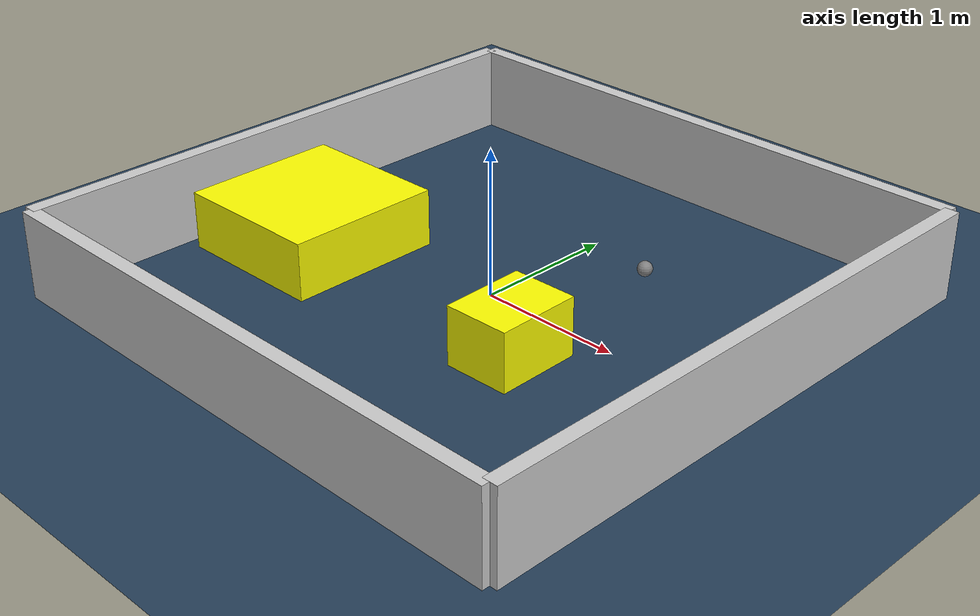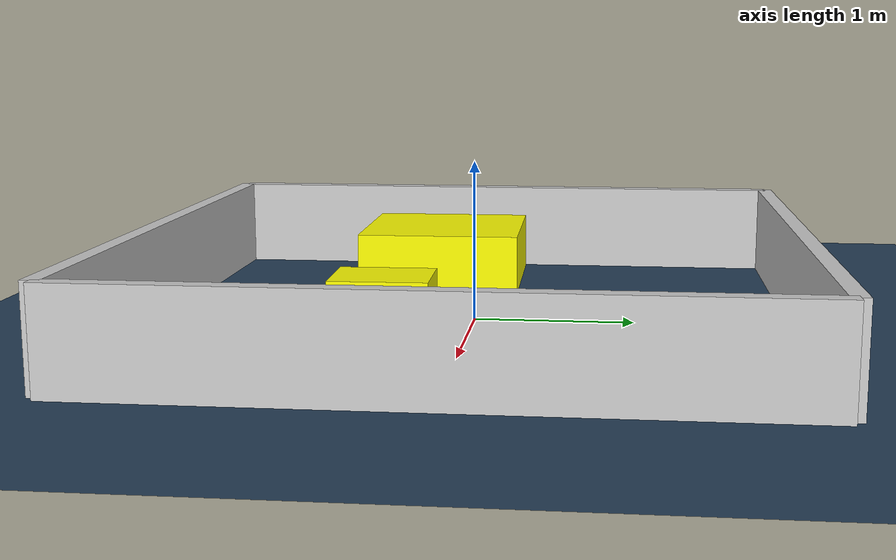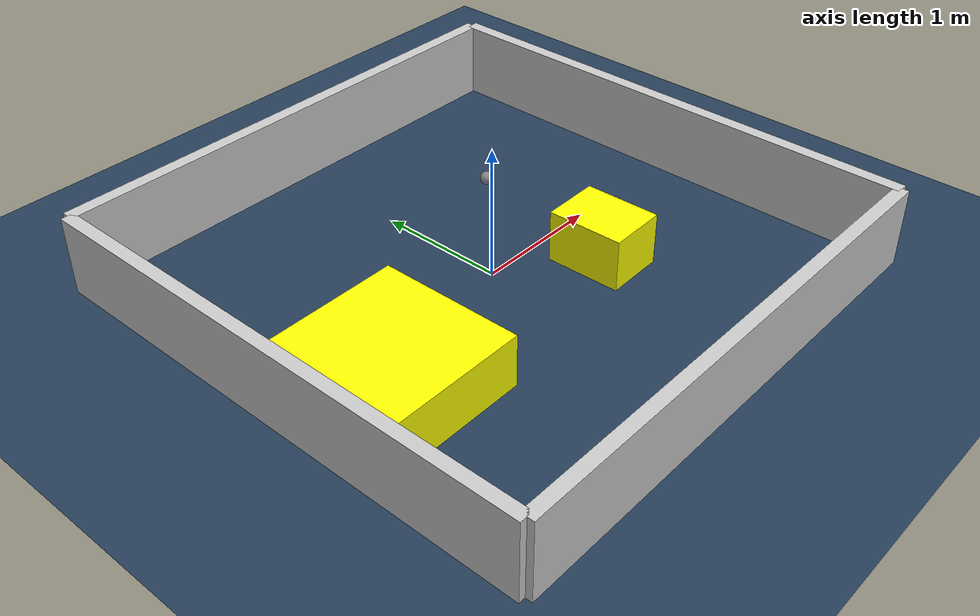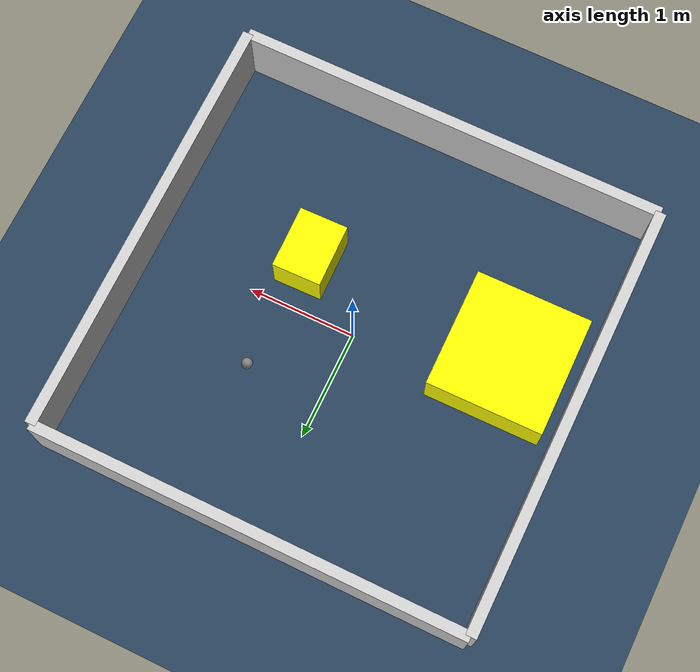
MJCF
<?xml version="1.0" ?>
<mujoco model="generated_environment">
  <option timestep="0.01" integrator="RK4" cone="elliptic"/>
  <default>
    <geom density="1"/>
  </default>
  <asset>
    <texture builtin="gradient" height="3072" rgb1="0.3 0.5 0.7" rgb2="0 0 0" type="skybox" width="512"/>
    <texture builtin="checker" height="300" mark="edge" markrgb="0.8 0.8 0.8" name="groundplane" rgb1="0.2 0.3 0.4" rgb2="0.1 0.2 0.3" type="2d" width="300"/>
    <material name="groundplane" reflectance="0.2" texrepeat="5 5" texture="groundplane" texuniform="true"/>
    <material name="robot" rgba="0.0 1.0 0.0 1"/>
  </asset>
  <worldbody>
    <light dir="0 0 -1" directional="true" pos="0 0 1.5"/>
    <geom condim="4" friction="1.0 0.005 0.001" material="groundplane" name="floor" size="0 0 0.05" type="plane"/>
    <body name="walls">
      <geom name="wall_1" condim="4" pos="-2.0 0.0 0.3" rgba="0.800000011920929 0.800000011920929 0.800000011920929 1.0" size="0.05 2.0 0.3" type="box"/>
      <geom name="wall_2" condim="4" pos="2.0 0.0 0.3" rgba="0.800000011920929 0.800000011920929 0.800000011920929 1.0" size="0.05 2.0 0.3" type="box"/>
      <geom name="wall_3" condim="4" pos="0.0 -2.0 0.3" rgba="0.800000011920929 0.800000011920929 0.800000011920929 1.0" size="2.0 0.05 0.3" type="box"/>
      <geom name="wall_4" condim="4" pos="0.0 2.0 0.3" rgba="0.800000011920929 0.800000011920929 0.800000011920929 1.0" size="2.0 0.05 0.3" type="box"/>
    </body>
    <body name="robot">
      <joint name="joint_x" type="slide" pos="0 0 0" axis="1 0 0"/>
      <joint name="joint_y" type="slide" pos="0 0 0" axis="0 1 0"/>
      <geom name="robot" type="sphere" pos="0.6922476112355933 0.6692254446767101 0.2" size="0.05" mass="5." friction="1.0 0.005 0.0001" condim="4"/>
      <site name="sensor_ball"/>
    </body>
    <body name="obstacle_1_movable">
      <geom name="obstacle_1_movable" condim="4" pos="0.6390974420479221 -0.47360713590235637 0.2" euler="0 0 1.1821624546144305" friction="1.0 0.005 0.001" rgba="1 1 0 1" size="0.2270170636465807 0.2926147276360051 0.2" type="box" mass="0.1"/>
      <joint type="free"/>
    </body>
    <body name="obstacle_2_movable">
      <geom name="obstacle_2_movable" condim="4" pos="-1.318559496942973 -0.34907043023143736 0.2" euler="0 0 180.52280817502657" friction="1.0 0.005 0.001" rgba="1 1 0 1" size="0.5349979092124728 0.5529650882953381 0.2" type="box" mass="0.1"/>
      <joint type="free"/>
    </body>
  </worldbody>
  <actuator>
    <motor name="actuator_x" joint="joint_x" gear="1" ctrlrange="-1 1"/>
    <motor name="actuator_y" joint="joint_y" gear="1" ctrlrange="-1 1"/>
  </actuator>
</mujoco>
